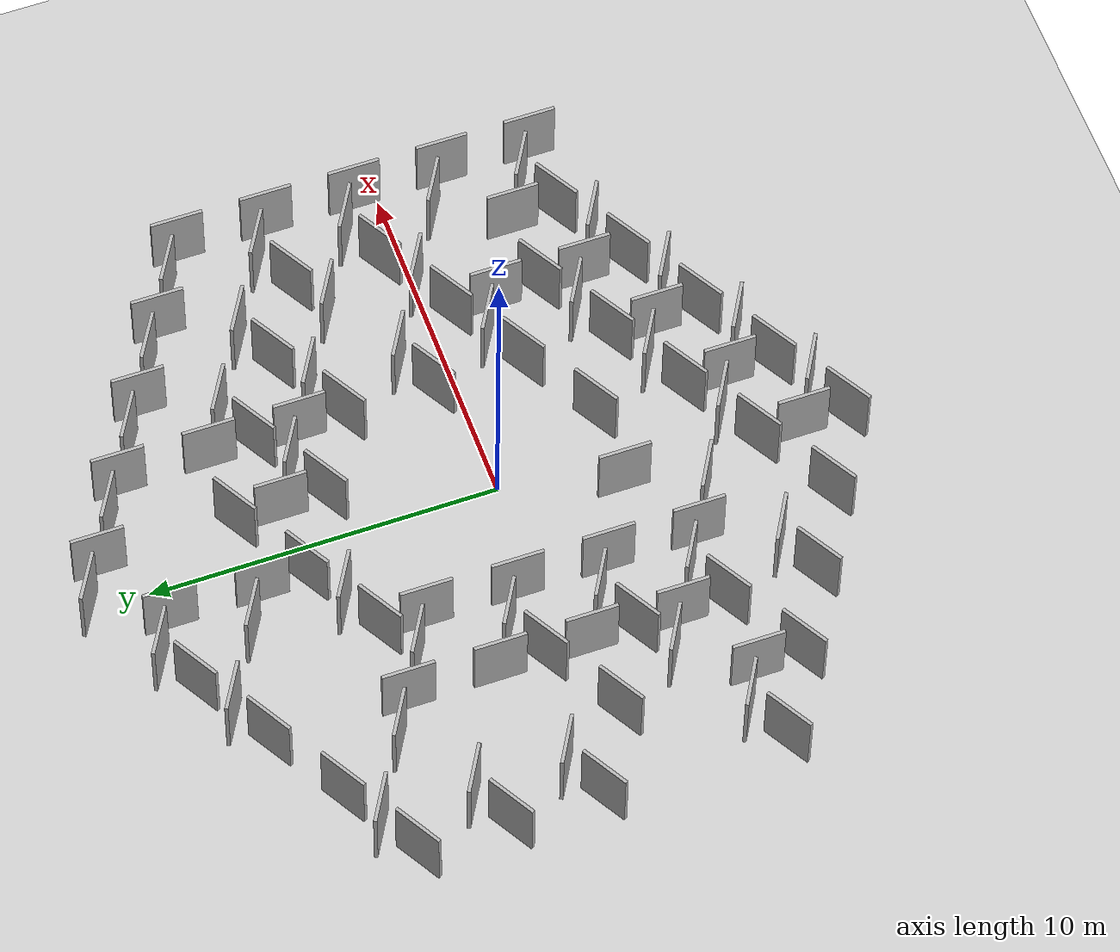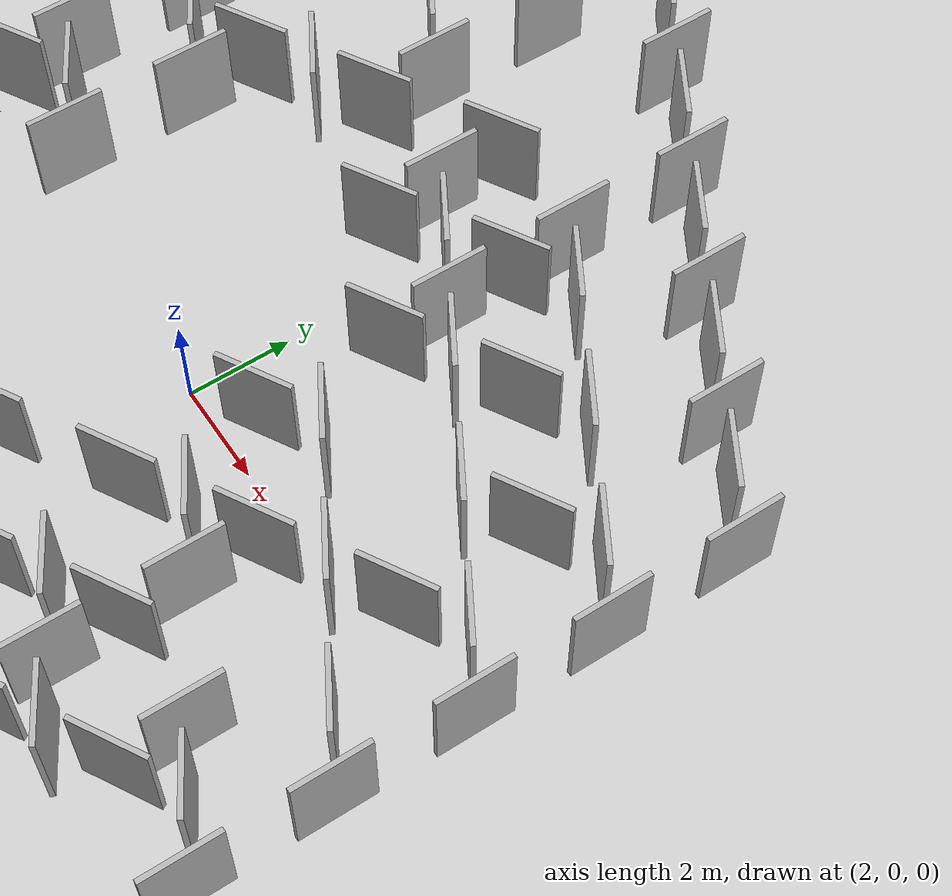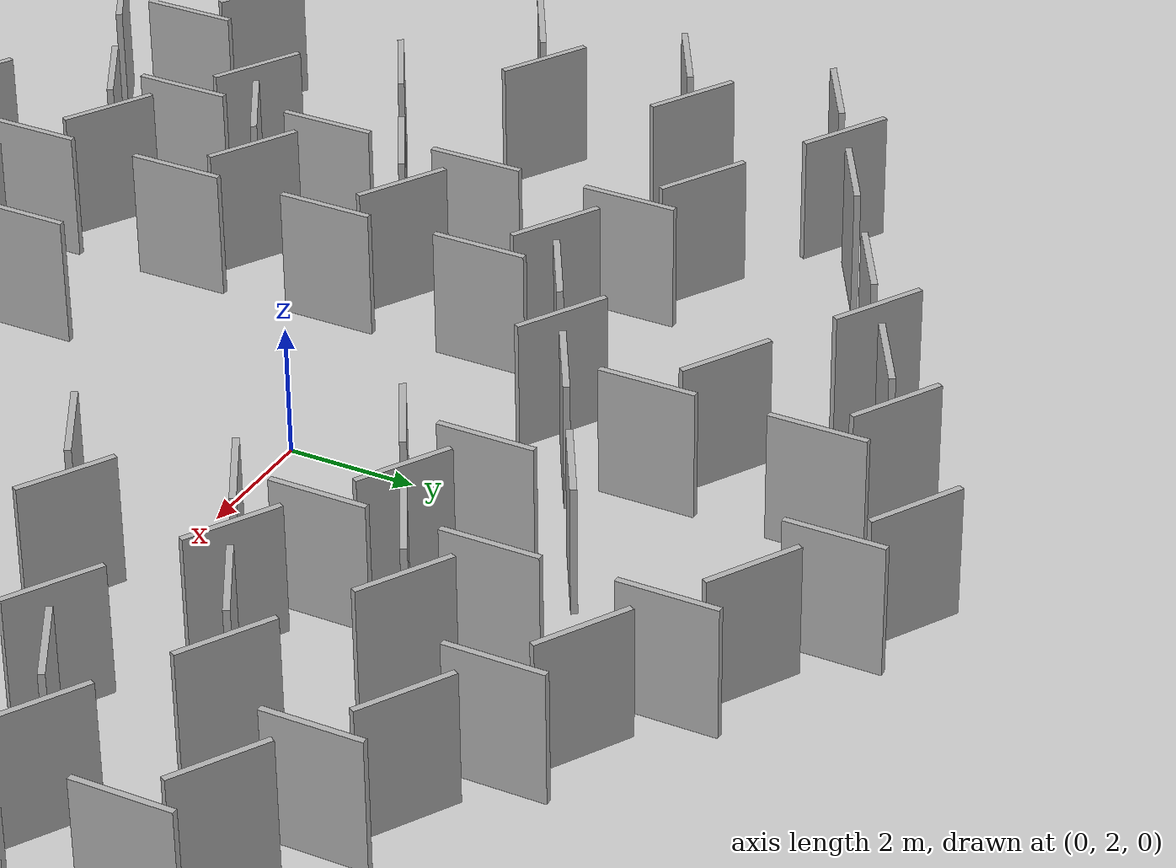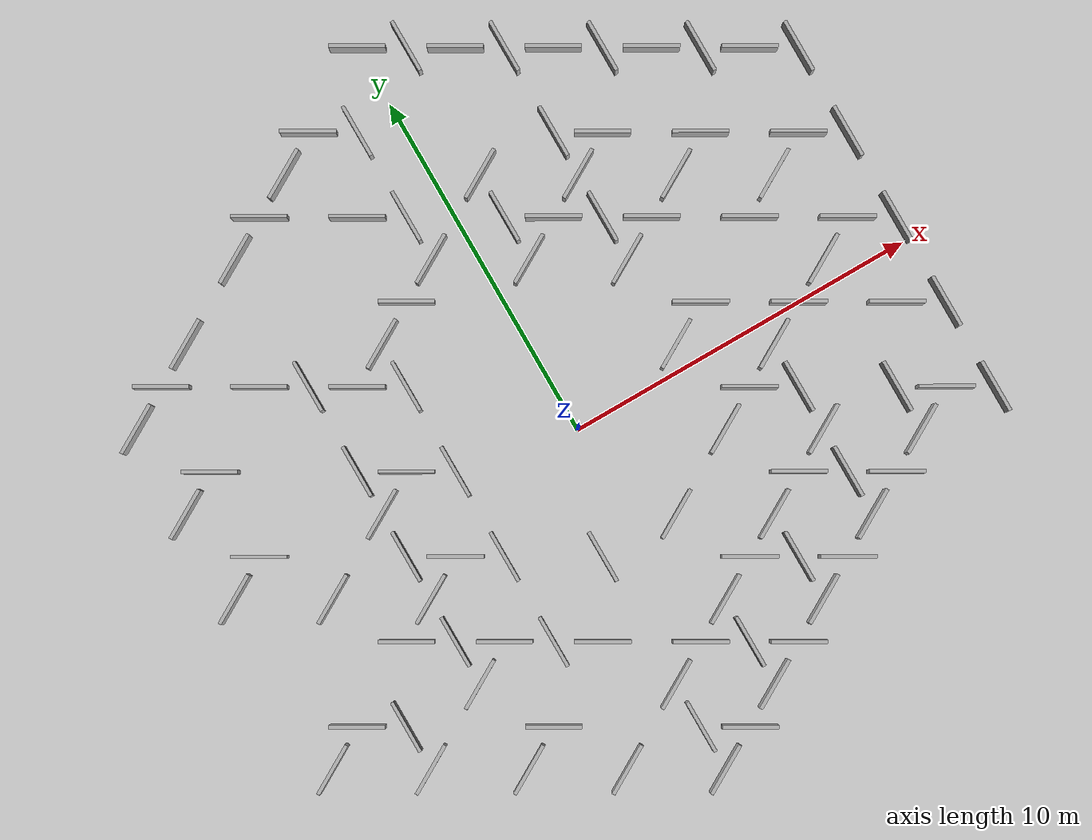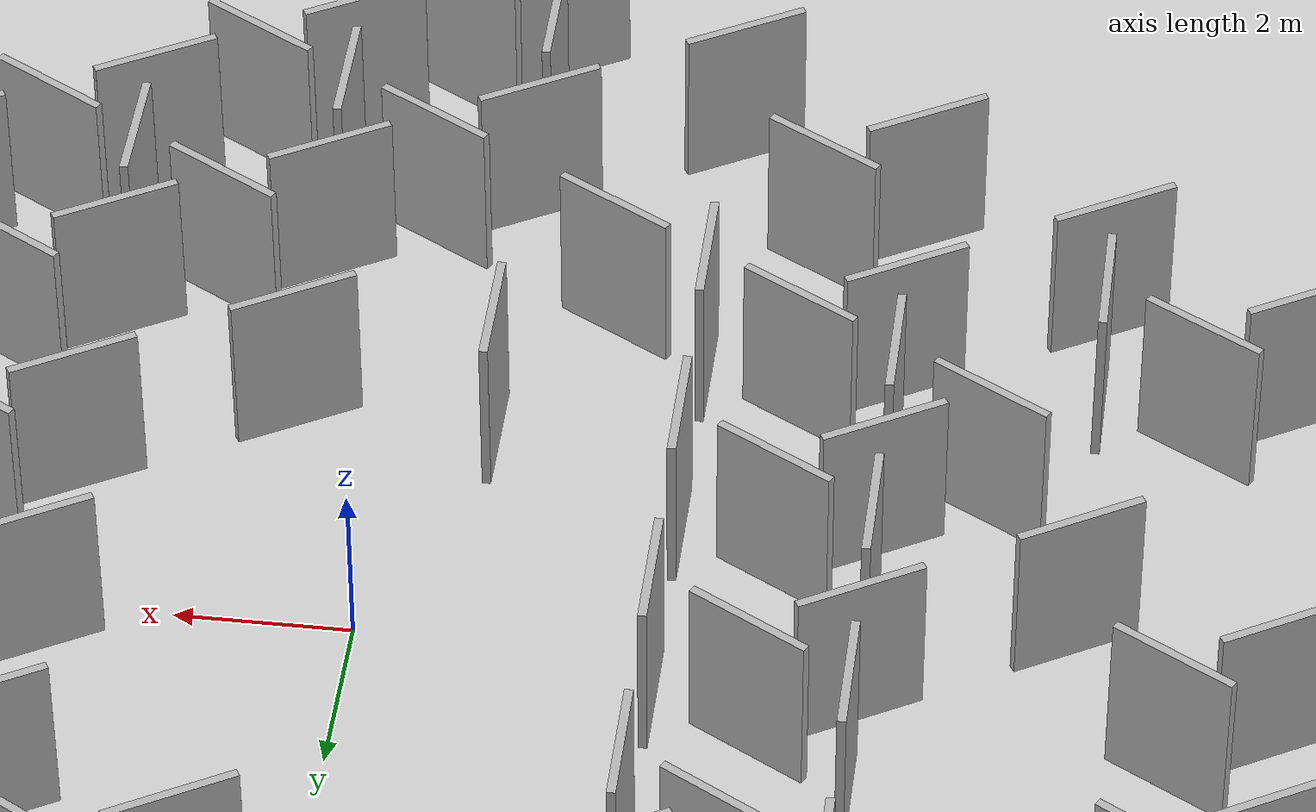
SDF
<?xml version="1.0" ?>
<sdf version="1.6">
  <world name="hex_maze_world">
    <include><uri>model://sun</uri></include>
    <include><uri>model://ground_plane</uri></include>
    <model name="sigma_maze">
      <static>true</static>

    <link name='wall_0'>
      <pose>-7.875 -4.546633369868303 1.0 0 0 1.5707963267948966</pose>
      <collision name='collision'>
        <geometry><box><size>1.5 0.1 2.0</size></box></geometry>
      </collision>
      <visual name='visual'>
        <geometry><box><size>1.5 0.1 2.0</size></box></geometry>
        <material><ambient>0.7 0.7 0.7 1</ambient><diffuse>0.7 0.7 0.7 1</diffuse></material>
      </visual>
    </link>
    <link name='wall_1'>
      <pose>-9.0 -3.897114317029974 1.0 0 0 2.617993877991494</pose>
      <collision name='collision'>
        <geometry><box><size>1.5 0.1 2.0</size></box></geometry>
      </collision>
      <visual name='visual'>
        <geometry><box><size>1.5 0.1 2.0</size></box></geometry>
        <material><ambient>0.7 0.7 0.7 1</ambient><diffuse>0.7 0.7 0.7 1</diffuse></material>
      </visual>
    </link>
    <link name='wall_2'>
      <pose>-10.125 -4.546633369868303 1.0 0 0 3.665191429188092</pose>
      <collision name='collision'>
        <geometry><box><size>1.5 0.1 2.0</size></box></geometry>
      </collision>
      <visual name='visual'>
        <geometry><box><size>1.5 0.1 2.0</size></box></geometry>
        <material><ambient>0.7 0.7 0.7 1</ambient><diffuse>0.7 0.7 0.7 1</diffuse></material>
      </visual>
    </link>
    <link name='wall_3'>
      <pose>-9.0 1.299038105676658 1.0 0 0 2.617993877991494</pose>
      <collision name='collision'>
        <geometry><box><size>1.5 0.1 2.0</size></box></geometry>
      </collision>
      <visual name='visual'>
        <geometry><box><size>1.5 0.1 2.0</size></box></geometry>
        <material><ambient>0.7 0.7 0.7 1</ambient><diffuse>0.7 0.7 0.7 1</diffuse></material>
      </visual>
    </link>
    <link name='wall_4'>
      <pose>-10.125 0.6495190528383294 1.0 0 0 3.665191429188092</pose>
      <collision name='collision'>
        <geometry><box><size>1.5 0.1 2.0</size></box></geometry>
      </collision>
      <visual name='visual'>
        <geometry><box><size>1.5 0.1 2.0</size></box></geometry>
        <material><ambient>0.7 0.7 0.7 1</ambient><diffuse>0.7 0.7 0.7 1</diffuse></material>
      </visual>
    </link>
    <link name='wall_5'>
      <pose>-9.0 3.8971143170299745 1.0 0 0 2.617993877991494</pose>
      <collision name='collision'>
        <geometry><box><size>1.5 0.1 2.0</size></box></geometry>
      </collision>
      <visual name='visual'>
        <geometry><box><size>1.5 0.1 2.0</size></box></geometry>
        <material><ambient>0.7 0.7 0.7 1</ambient><diffuse>0.7 0.7 0.7 1</diffuse></material>
      </visual>
    </link>
    <link name='wall_6'>
      <pose>-10.125 3.247595264191646 1.0 0 0 3.665191429188092</pose>
      <collision name='collision'>
        <geometry><box><size>1.5 0.1 2.0</size></box></geometry>
      </collision>
      <visual name='visual'>
        <geometry><box><size>1.5 0.1 2.0</size></box></geometry>
        <material><ambient>0.7 0.7 0.7 1</ambient><diffuse>0.7 0.7 0.7 1</diffuse></material>
      </visual>
    </link>
    <link name='wall_7'>
      <pose>-9.0 6.49519052838329 1.0 0 0 2.617993877991494</pose>
      <collision name='collision'>
        <geometry><box><size>1.5 0.1 2.0</size></box></geometry>
      </collision>
      <visual name='visual'>
        <geometry><box><size>1.5 0.1 2.0</size></box></geometry>
        <material><ambient>0.7 0.7 0.7 1</ambient><diffuse>0.7 0.7 0.7 1</diffuse></material>
      </visual>
    </link>
    <link name='wall_8'>
      <pose>-10.125 5.845671475544961 1.0 0 0 3.665191429188092</pose>
      <collision name='collision'>
        <geometry><box><size>1.5 0.1 2.0</size></box></geometry>
      </collision>
      <visual name='visual'>
        <geometry><box><size>1.5 0.1 2.0</size></box></geometry>
        <material><ambient>0.7 0.7 0.7 1</ambient><diffuse>0.7 0.7 0.7 1</diffuse></material>
      </visual>
    </link>
    <link name='wall_9'>
      <pose>-7.875 -5.845671475544959 1.0 0 0 3.665191429188092</pose>
      <collision name='collision'>
        <geometry><box><size>1.5 0.1 2.0</size></box></geometry>
      </collision>
      <visual name='visual'>
        <geometry><box><size>1.5 0.1 2.0</size></box></geometry>
        <material><ambient>0.7 0.7 0.7 1</ambient><diffuse>0.7 0.7 0.7 1</diffuse></material>
      </visual>
    </link>
    <link name='wall_10'>
      <pose>-5.625 -3.247595264191645 1.0 0 0 1.5707963267948966</pose>
      <collision name='collision'>
        <geometry><box><size>1.5 0.1 2.0</size></box></geometry>
      </collision>
      <visual name='visual'>
        <geometry><box><size>1.5 0.1 2.0</size></box></geometry>
        <material><ambient>0.7 0.7 0.7 1</ambient><diffuse>0.7 0.7 0.7 1</diffuse></material>
      </visual>
    </link>
    <link name='wall_11'>
      <pose>-6.75 -2.598076211353316 1.0 0 0 2.617993877991494</pose>
      <collision name='collision'>
        <geometry><box><size>1.5 0.1 2.0</size></box></geometry>
      </collision>
      <visual name='visual'>
        <geometry><box><size>1.5 0.1 2.0</size></box></geometry>
        <material><ambient>0.7 0.7 0.7 1</ambient><diffuse>0.7 0.7 0.7 1</diffuse></material>
      </visual>
    </link>
    <link name='wall_12'>
      <pose>-5.625 -0.6495190528383293 1.0 0 0 1.5707963267948966</pose>
      <collision name='collision'>
        <geometry><box><size>1.5 0.1 2.0</size></box></geometry>
      </collision>
      <visual name='visual'>
        <geometry><box><size>1.5 0.1 2.0</size></box></geometry>
        <material><ambient>0.7 0.7 0.7 1</ambient><diffuse>0.7 0.7 0.7 1</diffuse></material>
      </visual>
    </link>
    <link name='wall_13'>
      <pose>-7.875 -0.6495190528383288 1.0 0 0 3.665191429188092</pose>
      <collision name='collision'>
        <geometry><box><size>1.5 0.1 2.0</size></box></geometry>
      </collision>
      <visual name='visual'>
        <geometry><box><size>1.5 0.1 2.0</size></box></geometry>
        <material><ambient>0.7 0.7 0.7 1</ambient><diffuse>0.7 0.7 0.7 1</diffuse></material>
      </visual>
    </link>
    <link name='wall_14'>
      <pose>-5.625 1.9485571585149866 1.0 0 0 1.5707963267948966</pose>
      <collision name='collision'>
        <geometry><box><size>1.5 0.1 2.0</size></box></geometry>
      </collision>
      <visual name='visual'>
        <geometry><box><size>1.5 0.1 2.0</size></box></geometry>
        <material><ambient>0.7 0.7 0.7 1</ambient><diffuse>0.7 0.7 0.7 1</diffuse></material>
      </visual>
    </link>
    <link name='wall_15'>
      <pose>-5.625 4.546633369868303 1.0 0 0 1.5707963267948966</pose>
      <collision name='collision'>
        <geometry><box><size>1.5 0.1 2.0</size></box></geometry>
      </collision>
      <visual name='visual'>
        <geometry><box><size>1.5 0.1 2.0</size></box></geometry>
        <material><ambient>0.7 0.7 0.7 1</ambient><diffuse>0.7 0.7 0.7 1</diffuse></material>
      </visual>
    </link>
    <link name='wall_16'>
      <pose>-6.75 5.196152422706632 1.0 0 0 2.617993877991494</pose>
      <collision name='collision'>
        <geometry><box><size>1.5 0.1 2.0</size></box></geometry>
      </collision>
      <visual name='visual'>
        <geometry><box><size>1.5 0.1 2.0</size></box></geometry>
        <material><ambient>0.7 0.7 0.7 1</ambient><diffuse>0.7 0.7 0.7 1</diffuse></material>
      </visual>
    </link>
    <link name='wall_17'>
      <pose>-7.875 7.144709581221619 1.0 0 0 3.665191429188092</pose>
      <collision name='collision'>
        <geometry><box><size>1.5 0.1 2.0</size></box></geometry>
      </collision>
      <visual name='visual'>
        <geometry><box><size>1.5 0.1 2.0</size></box></geometry>
        <material><ambient>0.7 0.7 0.7 1</ambient><diffuse>0.7 0.7 0.7 1</diffuse></material>
      </visual>
    </link>
    <link name='wall_18'>
      <pose>-4.5 -6.49519052838329 1.0 0 0 2.617993877991494</pose>
      <collision name='collision'>
        <geometry><box><size>1.5 0.1 2.0</size></box></geometry>
      </collision>
      <visual name='visual'>
        <geometry><box><size>1.5 0.1 2.0</size></box></geometry>
        <material><ambient>0.7 0.7 0.7 1</ambient><diffuse>0.7 0.7 0.7 1</diffuse></material>
      </visual>
    </link>
    <link name='wall_19'>
      <pose>-5.625 -7.144709581221619 1.0 0 0 3.665191429188092</pose>
      <collision name='collision'>
        <geometry><box><size>1.5 0.1 2.0</size></box></geometry>
      </collision>
      <visual name='visual'>
        <geometry><box><size>1.5 0.1 2.0</size></box></geometry>
        <material><ambient>0.7 0.7 0.7 1</ambient><diffuse>0.7 0.7 0.7 1</diffuse></material>
      </visual>
    </link>
    <link name='wall_20'>
      <pose>-3.375 -4.546633369868303 1.0 0 0 1.5707963267948966</pose>
      <collision name='collision'>
        <geometry><box><size>1.5 0.1 2.0</size></box></geometry>
      </collision>
      <visual name='visual'>
        <geometry><box><size>1.5 0.1 2.0</size></box></geometry>
        <material><ambient>0.7 0.7 0.7 1</ambient><diffuse>0.7 0.7 0.7 1</diffuse></material>
      </visual>
    </link>
    <link name='wall_21'>
      <pose>-4.5 -3.897114317029974 1.0 0 0 2.617993877991494</pose>
      <collision name='collision'>
        <geometry><box><size>1.5 0.1 2.0</size></box></geometry>
      </collision>
      <visual name='visual'>
        <geometry><box><size>1.5 0.1 2.0</size></box></geometry>
        <material><ambient>0.7 0.7 0.7 1</ambient><diffuse>0.7 0.7 0.7 1</diffuse></material>
      </visual>
    </link>
    <link name='wall_22'>
      <pose>-5.625 -4.546633369868303 1.0 0 0 3.665191429188092</pose>
      <collision name='collision'>
        <geometry><box><size>1.5 0.1 2.0</size></box></geometry>
      </collision>
      <visual name='visual'>
        <geometry><box><size>1.5 0.1 2.0</size></box></geometry>
        <material><ambient>0.7 0.7 0.7 1</ambient><diffuse>0.7 0.7 0.7 1</diffuse></material>
      </visual>
    </link>
    <link name='wall_23'>
      <pose>-3.375 -1.948557158514987 1.0 0 0 1.5707963267948966</pose>
      <collision name='collision'>
        <geometry><box><size>1.5 0.1 2.0</size></box></geometry>
      </collision>
      <visual name='visual'>
        <geometry><box><size>1.5 0.1 2.0</size></box></geometry>
        <material><ambient>0.7 0.7 0.7 1</ambient><diffuse>0.7 0.7 0.7 1</diffuse></material>
      </visual>
    </link>
    <link name='wall_24'>
      <pose>-4.5 -1.299038105676658 1.0 0 0 2.617993877991494</pose>
      <collision name='collision'>
        <geometry><box><size>1.5 0.1 2.0</size></box></geometry>
      </collision>
      <visual name='visual'>
        <geometry><box><size>1.5 0.1 2.0</size></box></geometry>
        <material><ambient>0.7 0.7 0.7 1</ambient><diffuse>0.7 0.7 0.7 1</diffuse></material>
      </visual>
    </link>
    <link name='wall_25'>
      <pose>-5.625 -1.9485571585149866 1.0 0 0 3.665191429188092</pose>
      <collision name='collision'>
        <geometry><box><size>1.5 0.1 2.0</size></box></geometry>
      </collision>
      <visual name='visual'>
        <geometry><box><size>1.5 0.1 2.0</size></box></geometry>
        <material><ambient>0.7 0.7 0.7 1</ambient><diffuse>0.7 0.7 0.7 1</diffuse></material>
      </visual>
    </link>
    <link name='wall_26'>
      <pose>-3.375 0.6495190528383289 1.0 0 0 1.5707963267948966</pose>
      <collision name='collision'>
        <geometry><box><size>1.5 0.1 2.0</size></box></geometry>
      </collision>
      <visual name='visual'>
        <geometry><box><size>1.5 0.1 2.0</size></box></geometry>
        <material><ambient>0.7 0.7 0.7 1</ambient><diffuse>0.7 0.7 0.7 1</diffuse></material>
      </visual>
    </link>
    <link name='wall_27'>
      <pose>-4.5 1.299038105676658 1.0 0 0 2.617993877991494</pose>
      <collision name='collision'>
        <geometry><box><size>1.5 0.1 2.0</size></box></geometry>
      </collision>
      <visual name='visual'>
        <geometry><box><size>1.5 0.1 2.0</size></box></geometry>
        <material><ambient>0.7 0.7 0.7 1</ambient><diffuse>0.7 0.7 0.7 1</diffuse></material>
      </visual>
    </link>
    <link name='wall_28'>
      <pose>-5.625 0.6495190528383294 1.0 0 0 3.665191429188092</pose>
      <collision name='collision'>
        <geometry><box><size>1.5 0.1 2.0</size></box></geometry>
      </collision>
      <visual name='visual'>
        <geometry><box><size>1.5 0.1 2.0</size></box></geometry>
        <material><ambient>0.7 0.7 0.7 1</ambient><diffuse>0.7 0.7 0.7 1</diffuse></material>
      </visual>
    </link>
    <link name='wall_29'>
      <pose>-3.375 3.247595264191645 1.0 0 0 1.5707963267948966</pose>
      <collision name='collision'>
        <geometry><box><size>1.5 0.1 2.0</size></box></geometry>
      </collision>
      <visual name='visual'>
        <geometry><box><size>1.5 0.1 2.0</size></box></geometry>
        <material><ambient>0.7 0.7 0.7 1</ambient><diffuse>0.7 0.7 0.7 1</diffuse></material>
      </visual>
    </link>
    <link name='wall_30'>
      <pose>-4.5 3.897114317029974 1.0 0 0 2.617993877991494</pose>
      <collision name='collision'>
        <geometry><box><size>1.5 0.1 2.0</size></box></geometry>
      </collision>
      <visual name='visual'>
        <geometry><box><size>1.5 0.1 2.0</size></box></geometry>
        <material><ambient>0.7 0.7 0.7 1</ambient><diffuse>0.7 0.7 0.7 1</diffuse></material>
      </visual>
    </link>
    <link name='wall_31'>
      <pose>-4.5 9.093266739736606 1.0 0 0 2.617993877991494</pose>
      <collision name='collision'>
        <geometry><box><size>1.5 0.1 2.0</size></box></geometry>
      </collision>
      <visual name='visual'>
        <geometry><box><size>1.5 0.1 2.0</size></box></geometry>
        <material><ambient>0.7 0.7 0.7 1</ambient><diffuse>0.7 0.7 0.7 1</diffuse></material>
      </visual>
    </link>
    <link name='wall_32'>
      <pose>-5.625 8.443747686898277 1.0 0 0 3.665191429188092</pose>
      <collision name='collision'>
        <geometry><box><size>1.5 0.1 2.0</size></box></geometry>
      </collision>
      <visual name='visual'>
        <geometry><box><size>1.5 0.1 2.0</size></box></geometry>
        <material><ambient>0.7 0.7 0.7 1</ambient><diffuse>0.7 0.7 0.7 1</diffuse></material>
      </visual>
    </link>
    <link name='wall_33'>
      <pose>-1.125 -8.443747686898277 1.0 0 0 1.5707963267948966</pose>
      <collision name='collision'>
        <geometry><box><size>1.5 0.1 2.0</size></box></geometry>
      </collision>
      <visual name='visual'>
        <geometry><box><size>1.5 0.1 2.0</size></box></geometry>
        <material><ambient>0.7 0.7 0.7 1</ambient><diffuse>0.7 0.7 0.7 1</diffuse></material>
      </visual>
    </link>
    <link name='wall_34'>
      <pose>-3.375 -8.443747686898277 1.0 0 0 3.665191429188092</pose>
      <collision name='collision'>
        <geometry><box><size>1.5 0.1 2.0</size></box></geometry>
      </collision>
      <visual name='visual'>
        <geometry><box><size>1.5 0.1 2.0</size></box></geometry>
        <material><ambient>0.7 0.7 0.7 1</ambient><diffuse>0.7 0.7 0.7 1</diffuse></material>
      </visual>
    </link>
    <link name='wall_35'>
      <pose>-2.25 -5.196152422706631 1.0 0 0 2.617993877991494</pose>
      <collision name='collision'>
        <geometry><box><size>1.5 0.1 2.0</size></box></geometry>
      </collision>
      <visual name='visual'>
        <geometry><box><size>1.5 0.1 2.0</size></box></geometry>
        <material><ambient>0.7 0.7 0.7 1</ambient><diffuse>0.7 0.7 0.7 1</diffuse></material>
      </visual>
    </link>
    <link name='wall_36'>
      <pose>-1.125 -3.247595264191645 1.0 0 0 1.5707963267948966</pose>
      <collision name='collision'>
        <geometry><box><size>1.5 0.1 2.0</size></box></geometry>
      </collision>
      <visual name='visual'>
        <geometry><box><size>1.5 0.1 2.0</size></box></geometry>
        <material><ambient>0.7 0.7 0.7 1</ambient><diffuse>0.7 0.7 0.7 1</diffuse></material>
      </visual>
    </link>
    <link name='wall_37'>
      <pose>-2.25 5.196152422706632 1.0 0 0 2.617993877991494</pose>
      <collision name='collision'>
        <geometry><box><size>1.5 0.1 2.0</size></box></geometry>
      </collision>
      <visual name='visual'>
        <geometry><box><size>1.5 0.1 2.0</size></box></geometry>
        <material><ambient>0.7 0.7 0.7 1</ambient><diffuse>0.7 0.7 0.7 1</diffuse></material>
      </visual>
    </link>
    <link name='wall_38'>
      <pose>-3.375 4.546633369868303 1.0 0 0 3.665191429188092</pose>
      <collision name='collision'>
        <geometry><box><size>1.5 0.1 2.0</size></box></geometry>
      </collision>
      <visual name='visual'>
        <geometry><box><size>1.5 0.1 2.0</size></box></geometry>
        <material><ambient>0.7 0.7 0.7 1</ambient><diffuse>0.7 0.7 0.7 1</diffuse></material>
      </visual>
    </link>
    <link name='wall_39'>
      <pose>-1.125 7.144709581221619 1.0 0 0 1.5707963267948966</pose>
      <collision name='collision'>
        <geometry><box><size>1.5 0.1 2.0</size></box></geometry>
      </collision>
      <visual name='visual'>
        <geometry><box><size>1.5 0.1 2.0</size></box></geometry>
        <material><ambient>0.7 0.7 0.7 1</ambient><diffuse>0.7 0.7 0.7 1</diffuse></material>
      </visual>
    </link>
    <link name='wall_40'>
      <pose>-2.25 7.794228634059948 1.0 0 0 2.617993877991494</pose>
      <collision name='collision'>
        <geometry><box><size>1.5 0.1 2.0</size></box></geometry>
      </collision>
      <visual name='visual'>
        <geometry><box><size>1.5 0.1 2.0</size></box></geometry>
        <material><ambient>0.7 0.7 0.7 1</ambient><diffuse>0.7 0.7 0.7 1</diffuse></material>
      </visual>
    </link>
    <link name='wall_41'>
      <pose>-1.125 9.742785792574935 1.0 0 0 1.5707963267948966</pose>
      <collision name='collision'>
        <geometry><box><size>1.5 0.1 2.0</size></box></geometry>
      </collision>
      <visual name='visual'>
        <geometry><box><size>1.5 0.1 2.0</size></box></geometry>
        <material><ambient>0.7 0.7 0.7 1</ambient><diffuse>0.7 0.7 0.7 1</diffuse></material>
      </visual>
    </link>
    <link name='wall_42'>
      <pose>-2.25 10.392304845413264 1.0 0 0 2.617993877991494</pose>
      <collision name='collision'>
        <geometry><box><size>1.5 0.1 2.0</size></box></geometry>
      </collision>
      <visual name='visual'>
        <geometry><box><size>1.5 0.1 2.0</size></box></geometry>
        <material><ambient>0.7 0.7 0.7 1</ambient><diffuse>0.7 0.7 0.7 1</diffuse></material>
      </visual>
    </link>
    <link name='wall_43'>
      <pose>-3.375 9.742785792574935 1.0 0 0 3.665191429188092</pose>
      <collision name='collision'>
        <geometry><box><size>1.5 0.1 2.0</size></box></geometry>
      </collision>
      <visual name='visual'>
        <geometry><box><size>1.5 0.1 2.0</size></box></geometry>
        <material><ambient>0.7 0.7 0.7 1</ambient><diffuse>0.7 0.7 0.7 1</diffuse></material>
      </visual>
    </link>
    <link name='wall_44'>
      <pose>7.954314290436802e-17 -9.093266739736606 1.0 0 0 2.617993877991494</pose>
      <collision name='collision'>
        <geometry><box><size>1.5 0.1 2.0</size></box></geometry>
      </collision>
      <visual name='visual'>
        <geometry><box><size>1.5 0.1 2.0</size></box></geometry>
        <material><ambient>0.7 0.7 0.7 1</ambient><diffuse>0.7 0.7 0.7 1</diffuse></material>
      </visual>
    </link>
    <link name='wall_45'>
      <pose>-1.1249999999999998 -9.742785792574935 1.0 0 0 3.665191429188092</pose>
      <collision name='collision'>
        <geometry><box><size>1.5 0.1 2.0</size></box></geometry>
      </collision>
      <visual name='visual'>
        <geometry><box><size>1.5 0.1 2.0</size></box></geometry>
        <material><ambient>0.7 0.7 0.7 1</ambient><diffuse>0.7 0.7 0.7 1</diffuse></material>
      </visual>
    </link>
    <link name='wall_46'>
      <pose>1.125 -7.144709581221619 1.0 0 0 1.5707963267948966</pose>
      <collision name='collision'>
        <geometry><box><size>1.5 0.1 2.0</size></box></geometry>
      </collision>
      <visual name='visual'>
        <geometry><box><size>1.5 0.1 2.0</size></box></geometry>
        <material><ambient>0.7 0.7 0.7 1</ambient><diffuse>0.7 0.7 0.7 1</diffuse></material>
      </visual>
    </link>
    <link name='wall_47'>
      <pose>7.954314290436802e-17 -6.49519052838329 1.0 0 0 2.617993877991494</pose>
      <collision name='collision'>
        <geometry><box><size>1.5 0.1 2.0</size></box></geometry>
      </collision>
      <visual name='visual'>
        <geometry><box><size>1.5 0.1 2.0</size></box></geometry>
        <material><ambient>0.7 0.7 0.7 1</ambient><diffuse>0.7 0.7 0.7 1</diffuse></material>
      </visual>
    </link>
    <link name='wall_48'>
      <pose>-1.1249999999999998 -7.144709581221619 1.0 0 0 3.665191429188092</pose>
      <collision name='collision'>
        <geometry><box><size>1.5 0.1 2.0</size></box></geometry>
      </collision>
      <visual name='visual'>
        <geometry><box><size>1.5 0.1 2.0</size></box></geometry>
        <material><ambient>0.7 0.7 0.7 1</ambient><diffuse>0.7 0.7 0.7 1</diffuse></material>
      </visual>
    </link>
    <link name='wall_49'>
      <pose>1.125 5.845671475544961 1.0 0 0 1.5707963267948966</pose>
      <collision name='collision'>
        <geometry><box><size>1.5 0.1 2.0</size></box></geometry>
      </collision>
      <visual name='visual'>
        <geometry><box><size>1.5 0.1 2.0</size></box></geometry>
        <material><ambient>0.7 0.7 0.7 1</ambient><diffuse>0.7 0.7 0.7 1</diffuse></material>
      </visual>
    </link>
    <link name='wall_50'>
      <pose>-1.1249999999999998 5.845671475544961 1.0 0 0 3.665191429188092</pose>
      <collision name='collision'>
        <geometry><box><size>1.5 0.1 2.0</size></box></geometry>
      </collision>
      <visual name='visual'>
        <geometry><box><size>1.5 0.1 2.0</size></box></geometry>
        <material><ambient>0.7 0.7 0.7 1</ambient><diffuse>0.7 0.7 0.7 1</diffuse></material>
      </visual>
    </link>
    <link name='wall_51'>
      <pose>1.125 11.041823898251593 1.0 0 0 1.5707963267948966</pose>
      <collision name='collision'>
        <geometry><box><size>1.5 0.1 2.0</size></box></geometry>
      </collision>
      <visual name='visual'>
        <geometry><box><size>1.5 0.1 2.0</size></box></geometry>
        <material><ambient>0.7 0.7 0.7 1</ambient><diffuse>0.7 0.7 0.7 1</diffuse></material>
      </visual>
    </link>
    <link name='wall_52'>
      <pose>7.954314290436802e-17 11.691342951089922 1.0 0 0 2.617993877991494</pose>
      <collision name='collision'>
        <geometry><box><size>1.5 0.1 2.0</size></box></geometry>
      </collision>
      <visual name='visual'>
        <geometry><box><size>1.5 0.1 2.0</size></box></geometry>
        <material><ambient>0.7 0.7 0.7 1</ambient><diffuse>0.7 0.7 0.7 1</diffuse></material>
      </visual>
    </link>
    <link name='wall_53'>
      <pose>2.25 -7.794228634059948 1.0 0 0 2.617993877991494</pose>
      <collision name='collision'>
        <geometry><box><size>1.5 0.1 2.0</size></box></geometry>
      </collision>
      <visual name='visual'>
        <geometry><box><size>1.5 0.1 2.0</size></box></geometry>
        <material><ambient>0.7 0.7 0.7 1</ambient><diffuse>0.7 0.7 0.7 1</diffuse></material>
      </visual>
    </link>
    <link name='wall_54'>
      <pose>1.1250000000000002 -8.443747686898277 1.0 0 0 3.665191429188092</pose>
      <collision name='collision'>
        <geometry><box><size>1.5 0.1 2.0</size></box></geometry>
      </collision>
      <visual name='visual'>
        <geometry><box><size>1.5 0.1 2.0</size></box></geometry>
        <material><ambient>0.7 0.7 0.7 1</ambient><diffuse>0.7 0.7 0.7 1</diffuse></material>
      </visual>
    </link>
    <link name='wall_55'>
      <pose>3.375 -5.845671475544961 1.0 0 0 1.5707963267948966</pose>
      <collision name='collision'>
        <geometry><box><size>1.5 0.1 2.0</size></box></geometry>
      </collision>
      <visual name='visual'>
        <geometry><box><size>1.5 0.1 2.0</size></box></geometry>
        <material><ambient>0.7 0.7 0.7 1</ambient><diffuse>0.7 0.7 0.7 1</diffuse></material>
      </visual>
    </link>
    <link name='wall_56'>
      <pose>2.25 -5.196152422706632 1.0 0 0 2.617993877991494</pose>
      <collision name='collision'>
        <geometry><box><size>1.5 0.1 2.0</size></box></geometry>
      </collision>
      <visual name='visual'>
        <geometry><box><size>1.5 0.1 2.0</size></box></geometry>
        <material><ambient>0.7 0.7 0.7 1</ambient><diffuse>0.7 0.7 0.7 1</diffuse></material>
      </visual>
    </link>
    <link name='wall_57'>
      <pose>1.1250000000000002 -5.845671475544961 1.0 0 0 3.665191429188092</pose>
      <collision name='collision'>
        <geometry><box><size>1.5 0.1 2.0</size></box></geometry>
      </collision>
      <visual name='visual'>
        <geometry><box><size>1.5 0.1 2.0</size></box></geometry>
        <material><ambient>0.7 0.7 0.7 1</ambient><diffuse>0.7 0.7 0.7 1</diffuse></material>
      </visual>
    </link>
    <link name='wall_58'>
      <pose>1.1250000000000002 -3.2475952641916446 1.0 0 0 3.665191429188092</pose>
      <collision name='collision'>
        <geometry><box><size>1.5 0.1 2.0</size></box></geometry>
      </collision>
      <visual name='visual'>
        <geometry><box><size>1.5 0.1 2.0</size></box></geometry>
        <material><ambient>0.7 0.7 0.7 1</ambient><diffuse>0.7 0.7 0.7 1</diffuse></material>
      </visual>
    </link>
    <link name='wall_59'>
      <pose>3.375 4.546633369868303 1.0 0 0 1.5707963267948966</pose>
      <collision name='collision'>
        <geometry><box><size>1.5 0.1 2.0</size></box></geometry>
      </collision>
      <visual name='visual'>
        <geometry><box><size>1.5 0.1 2.0</size></box></geometry>
        <material><ambient>0.7 0.7 0.7 1</ambient><diffuse>0.7 0.7 0.7 1</diffuse></material>
      </visual>
    </link>
    <link name='wall_60'>
      <pose>2.25 5.196152422706632 1.0 0 0 2.617993877991494</pose>
      <collision name='collision'>
        <geometry><box><size>1.5 0.1 2.0</size></box></geometry>
      </collision>
      <visual name='visual'>
        <geometry><box><size>1.5 0.1 2.0</size></box></geometry>
        <material><ambient>0.7 0.7 0.7 1</ambient><diffuse>0.7 0.7 0.7 1</diffuse></material>
      </visual>
    </link>
    <link name='wall_61'>
      <pose>1.1250000000000002 4.546633369868303 1.0 0 0 3.665191429188092</pose>
      <collision name='collision'>
        <geometry><box><size>1.5 0.1 2.0</size></box></geometry>
      </collision>
      <visual name='visual'>
        <geometry><box><size>1.5 0.1 2.0</size></box></geometry>
        <material><ambient>0.7 0.7 0.7 1</ambient><diffuse>0.7 0.7 0.7 1</diffuse></material>
      </visual>
    </link>
    <link name='wall_62'>
      <pose>3.375 7.144709581221618 1.0 0 0 1.5707963267948966</pose>
      <collision name='collision'>
        <geometry><box><size>1.5 0.1 2.0</size></box></geometry>
      </collision>
      <visual name='visual'>
        <geometry><box><size>1.5 0.1 2.0</size></box></geometry>
        <material><ambient>0.7 0.7 0.7 1</ambient><diffuse>0.7 0.7 0.7 1</diffuse></material>
      </visual>
    </link>
    <link name='wall_63'>
      <pose>1.1250000000000002 7.144709581221619 1.0 0 0 3.665191429188092</pose>
      <collision name='collision'>
        <geometry><box><size>1.5 0.1 2.0</size></box></geometry>
      </collision>
      <visual name='visual'>
        <geometry><box><size>1.5 0.1 2.0</size></box></geometry>
        <material><ambient>0.7 0.7 0.7 1</ambient><diffuse>0.7 0.7 0.7 1</diffuse></material>
      </visual>
    </link>
    <link name='wall_64'>
      <pose>3.375 9.742785792574935 1.0 0 0 1.5707963267948966</pose>
      <collision name='collision'>
        <geometry><box><size>1.5 0.1 2.0</size></box></geometry>
      </collision>
      <visual name='visual'>
        <geometry><box><size>1.5 0.1 2.0</size></box></geometry>
        <material><ambient>0.7 0.7 0.7 1</ambient><diffuse>0.7 0.7 0.7 1</diffuse></material>
      </visual>
    </link>
    <link name='wall_65'>
      <pose>2.25 10.392304845413264 1.0 0 0 2.617993877991494</pose>
      <collision name='collision'>
        <geometry><box><size>1.5 0.1 2.0</size></box></geometry>
      </collision>
      <visual name='visual'>
        <geometry><box><size>1.5 0.1 2.0</size></box></geometry>
        <material><ambient>0.7 0.7 0.7 1</ambient><diffuse>0.7 0.7 0.7 1</diffuse></material>
      </visual>
    </link>
    <link name='wall_66'>
      <pose>4.5 -6.49519052838329 1.0 0 0 2.617993877991494</pose>
      <collision name='collision'>
        <geometry><box><size>1.5 0.1 2.0</size></box></geometry>
      </collision>
      <visual name='visual'>
        <geometry><box><size>1.5 0.1 2.0</size></box></geometry>
        <material><ambient>0.7 0.7 0.7 1</ambient><diffuse>0.7 0.7 0.7 1</diffuse></material>
      </visual>
    </link>
    <link name='wall_67'>
      <pose>3.375 -7.144709581221619 1.0 0 0 3.665191429188092</pose>
      <collision name='collision'>
        <geometry><box><size>1.5 0.1 2.0</size></box></geometry>
      </collision>
      <visual name='visual'>
        <geometry><box><size>1.5 0.1 2.0</size></box></geometry>
        <material><ambient>0.7 0.7 0.7 1</ambient><diffuse>0.7 0.7 0.7 1</diffuse></material>
      </visual>
    </link>
    <link name='wall_68'>
      <pose>5.625 -4.546633369868303 1.0 0 0 1.5707963267948966</pose>
      <collision name='collision'>
        <geometry><box><size>1.5 0.1 2.0</size></box></geometry>
      </collision>
      <visual name='visual'>
        <geometry><box><size>1.5 0.1 2.0</size></box></geometry>
        <material><ambient>0.7 0.7 0.7 1</ambient><diffuse>0.7 0.7 0.7 1</diffuse></material>
      </visual>
    </link>
    <link name='wall_69'>
      <pose>4.5 -3.897114317029974 1.0 0 0 2.617993877991494</pose>
      <collision name='collision'>
        <geometry><box><size>1.5 0.1 2.0</size></box></geometry>
      </collision>
      <visual name='visual'>
        <geometry><box><size>1.5 0.1 2.0</size></box></geometry>
        <material><ambient>0.7 0.7 0.7 1</ambient><diffuse>0.7 0.7 0.7 1</diffuse></material>
      </visual>
    </link>
    <link name='wall_70'>
      <pose>3.375 -4.546633369868303 1.0 0 0 3.665191429188092</pose>
      <collision name='collision'>
        <geometry><box><size>1.5 0.1 2.0</size></box></geometry>
      </collision>
      <visual name='visual'>
        <geometry><box><size>1.5 0.1 2.0</size></box></geometry>
        <material><ambient>0.7 0.7 0.7 1</ambient><diffuse>0.7 0.7 0.7 1</diffuse></material>
      </visual>
    </link>
    <link name='wall_71'>
      <pose>5.625 -1.948557158514987 1.0 0 0 1.5707963267948966</pose>
      <collision name='collision'>
        <geometry><box><size>1.5 0.1 2.0</size></box></geometry>
      </collision>
      <visual name='visual'>
        <geometry><box><size>1.5 0.1 2.0</size></box></geometry>
        <material><ambient>0.7 0.7 0.7 1</ambient><diffuse>0.7 0.7 0.7 1</diffuse></material>
      </visual>
    </link>
    <link name='wall_72'>
      <pose>4.5 -1.299038105676658 1.0 0 0 2.617993877991494</pose>
      <collision name='collision'>
        <geometry><box><size>1.5 0.1 2.0</size></box></geometry>
      </collision>
      <visual name='visual'>
        <geometry><box><size>1.5 0.1 2.0</size></box></geometry>
        <material><ambient>0.7 0.7 0.7 1</ambient><diffuse>0.7 0.7 0.7 1</diffuse></material>
      </visual>
    </link>
    <link name='wall_73'>
      <pose>3.375 -1.9485571585149866 1.0 0 0 3.665191429188092</pose>
      <collision name='collision'>
        <geometry><box><size>1.5 0.1 2.0</size></box></geometry>
      </collision>
      <visual name='visual'>
        <geometry><box><size>1.5 0.1 2.0</size></box></geometry>
        <material><ambient>0.7 0.7 0.7 1</ambient><diffuse>0.7 0.7 0.7 1</diffuse></material>
      </visual>
    </link>
    <link name='wall_74'>
      <pose>4.5 1.299038105676658 1.0 0 0 2.617993877991494</pose>
      <collision name='collision'>
        <geometry><box><size>1.5 0.1 2.0</size></box></geometry>
      </collision>
      <visual name='visual'>
        <geometry><box><size>1.5 0.1 2.0</size></box></geometry>
        <material><ambient>0.7 0.7 0.7 1</ambient><diffuse>0.7 0.7 0.7 1</diffuse></material>
      </visual>
    </link>
    <link name='wall_75'>
      <pose>3.375 0.6495190528383294 1.0 0 0 3.665191429188092</pose>
      <collision name='collision'>
        <geometry><box><size>1.5 0.1 2.0</size></box></geometry>
      </collision>
      <visual name='visual'>
        <geometry><box><size>1.5 0.1 2.0</size></box></geometry>
        <material><ambient>0.7 0.7 0.7 1</ambient><diffuse>0.7 0.7 0.7 1</diffuse></material>
      </visual>
    </link>
    <link name='wall_76'>
      <pose>4.5 3.897114317029974 1.0 0 0 2.617993877991494</pose>
      <collision name='collision'>
        <geometry><box><size>1.5 0.1 2.0</size></box></geometry>
      </collision>
      <visual name='visual'>
        <geometry><box><size>1.5 0.1 2.0</size></box></geometry>
        <material><ambient>0.7 0.7 0.7 1</ambient><diffuse>0.7 0.7 0.7 1</diffuse></material>
      </visual>
    </link>
    <link name='wall_77'>
      <pose>3.375 3.2475952641916455 1.0 0 0 3.665191429188092</pose>
      <collision name='collision'>
        <geometry><box><size>1.5 0.1 2.0</size></box></geometry>
      </collision>
      <visual name='visual'>
        <geometry><box><size>1.5 0.1 2.0</size></box></geometry>
        <material><ambient>0.7 0.7 0.7 1</ambient><diffuse>0.7 0.7 0.7 1</diffuse></material>
      </visual>
    </link>
    <link name='wall_78'>
      <pose>4.5 6.49519052838329 1.0 0 0 2.617993877991494</pose>
      <collision name='collision'>
        <geometry><box><size>1.5 0.1 2.0</size></box></geometry>
      </collision>
      <visual name='visual'>
        <geometry><box><size>1.5 0.1 2.0</size></box></geometry>
        <material><ambient>0.7 0.7 0.7 1</ambient><diffuse>0.7 0.7 0.7 1</diffuse></material>
      </visual>
    </link>
    <link name='wall_79'>
      <pose>3.375 5.845671475544961 1.0 0 0 3.665191429188092</pose>
      <collision name='collision'>
        <geometry><box><size>1.5 0.1 2.0</size></box></geometry>
      </collision>
      <visual name='visual'>
        <geometry><box><size>1.5 0.1 2.0</size></box></geometry>
        <material><ambient>0.7 0.7 0.7 1</ambient><diffuse>0.7 0.7 0.7 1</diffuse></material>
      </visual>
    </link>
    <link name='wall_80'>
      <pose>5.625 8.443747686898277 1.0 0 0 1.5707963267948966</pose>
      <collision name='collision'>
        <geometry><box><size>1.5 0.1 2.0</size></box></geometry>
      </collision>
      <visual name='visual'>
        <geometry><box><size>1.5 0.1 2.0</size></box></geometry>
        <material><ambient>0.7 0.7 0.7 1</ambient><diffuse>0.7 0.7 0.7 1</diffuse></material>
      </visual>
    </link>
    <link name='wall_81'>
      <pose>4.5 9.093266739736606 1.0 0 0 2.617993877991494</pose>
      <collision name='collision'>
        <geometry><box><size>1.5 0.1 2.0</size></box></geometry>
      </collision>
      <visual name='visual'>
        <geometry><box><size>1.5 0.1 2.0</size></box></geometry>
        <material><ambient>0.7 0.7 0.7 1</ambient><diffuse>0.7 0.7 0.7 1</diffuse></material>
      </visual>
    </link>
    <link name='wall_82'>
      <pose>6.75 -5.196152422706631 1.0 0 0 2.617993877991494</pose>
      <collision name='collision'>
        <geometry><box><size>1.5 0.1 2.0</size></box></geometry>
      </collision>
      <visual name='visual'>
        <geometry><box><size>1.5 0.1 2.0</size></box></geometry>
        <material><ambient>0.7 0.7 0.7 1</ambient><diffuse>0.7 0.7 0.7 1</diffuse></material>
      </visual>
    </link>
    <link name='wall_83'>
      <pose>5.625 -5.845671475544959 1.0 0 0 3.665191429188092</pose>
      <collision name='collision'>
        <geometry><box><size>1.5 0.1 2.0</size></box></geometry>
      </collision>
      <visual name='visual'>
        <geometry><box><size>1.5 0.1 2.0</size></box></geometry>
        <material><ambient>0.7 0.7 0.7 1</ambient><diffuse>0.7 0.7 0.7 1</diffuse></material>
      </visual>
    </link>
    <link name='wall_84'>
      <pose>7.875 -3.247595264191645 1.0 0 0 1.5707963267948966</pose>
      <collision name='collision'>
        <geometry><box><size>1.5 0.1 2.0</size></box></geometry>
      </collision>
      <visual name='visual'>
        <geometry><box><size>1.5 0.1 2.0</size></box></geometry>
        <material><ambient>0.7 0.7 0.7 1</ambient><diffuse>0.7 0.7 0.7 1</diffuse></material>
      </visual>
    </link>
    <link name='wall_85'>
      <pose>5.625 -3.2475952641916446 1.0 0 0 3.665191429188092</pose>
      <collision name='collision'>
        <geometry><box><size>1.5 0.1 2.0</size></box></geometry>
      </collision>
      <visual name='visual'>
        <geometry><box><size>1.5 0.1 2.0</size></box></geometry>
        <material><ambient>0.7 0.7 0.7 1</ambient><diffuse>0.7 0.7 0.7 1</diffuse></material>
      </visual>
    </link>
    <link name='wall_86'>
      <pose>6.75 4.440892098500626e-16 1.0 0 0 2.617993877991494</pose>
      <collision name='collision'>
        <geometry><box><size>1.5 0.1 2.0</size></box></geometry>
      </collision>
      <visual name='visual'>
        <geometry><box><size>1.5 0.1 2.0</size></box></geometry>
        <material><ambient>0.7 0.7 0.7 1</ambient><diffuse>0.7 0.7 0.7 1</diffuse></material>
      </visual>
    </link>
    <link name='wall_87'>
      <pose>5.625 -0.6495190528383281 1.0 0 0 3.665191429188092</pose>
      <collision name='collision'>
        <geometry><box><size>1.5 0.1 2.0</size></box></geometry>
      </collision>
      <visual name='visual'>
        <geometry><box><size>1.5 0.1 2.0</size></box></geometry>
        <material><ambient>0.7 0.7 0.7 1</ambient><diffuse>0.7 0.7 0.7 1</diffuse></material>
      </visual>
    </link>
    <link name='wall_88'>
      <pose>6.75 2.598076211353316 1.0 0 0 2.617993877991494</pose>
      <collision name='collision'>
        <geometry><box><size>1.5 0.1 2.0</size></box></geometry>
      </collision>
      <visual name='visual'>
        <geometry><box><size>1.5 0.1 2.0</size></box></geometry>
        <material><ambient>0.7 0.7 0.7 1</ambient><diffuse>0.7 0.7 0.7 1</diffuse></material>
      </visual>
    </link>
    <link name='wall_89'>
      <pose>6.75 5.196152422706632 1.0 0 0 2.617993877991494</pose>
      <collision name='collision'>
        <geometry><box><size>1.5 0.1 2.0</size></box></geometry>
      </collision>
      <visual name='visual'>
        <geometry><box><size>1.5 0.1 2.0</size></box></geometry>
        <material><ambient>0.7 0.7 0.7 1</ambient><diffuse>0.7 0.7 0.7 1</diffuse></material>
      </visual>
    </link>
    <link name='wall_90'>
      <pose>5.625 4.546633369868303 1.0 0 0 3.665191429188092</pose>
      <collision name='collision'>
        <geometry><box><size>1.5 0.1 2.0</size></box></geometry>
      </collision>
      <visual name='visual'>
        <geometry><box><size>1.5 0.1 2.0</size></box></geometry>
        <material><ambient>0.7 0.7 0.7 1</ambient><diffuse>0.7 0.7 0.7 1</diffuse></material>
      </visual>
    </link>
    <link name='wall_91'>
      <pose>7.875 7.144709581221618 1.0 0 0 1.5707963267948966</pose>
      <collision name='collision'>
        <geometry><box><size>1.5 0.1 2.0</size></box></geometry>
      </collision>
      <visual name='visual'>
        <geometry><box><size>1.5 0.1 2.0</size></box></geometry>
        <material><ambient>0.7 0.7 0.7 1</ambient><diffuse>0.7 0.7 0.7 1</diffuse></material>
      </visual>
    </link>
    <link name='wall_92'>
      <pose>6.75 7.794228634059947 1.0 0 0 2.617993877991494</pose>
      <collision name='collision'>
        <geometry><box><size>1.5 0.1 2.0</size></box></geometry>
      </collision>
      <visual name='visual'>
        <geometry><box><size>1.5 0.1 2.0</size></box></geometry>
        <material><ambient>0.7 0.7 0.7 1</ambient><diffuse>0.7 0.7 0.7 1</diffuse></material>
      </visual>
    </link>
    <link name='wall_93'>
      <pose>10.125 -4.546633369868303 1.0 0 0 1.5707963267948966</pose>
      <collision name='collision'>
        <geometry><box><size>1.5 0.1 2.0</size></box></geometry>
      </collision>
      <visual name='visual'>
        <geometry><box><size>1.5 0.1 2.0</size></box></geometry>
        <material><ambient>0.7 0.7 0.7 1</ambient><diffuse>0.7 0.7 0.7 1</diffuse></material>
      </visual>
    </link>
    <link name='wall_94'>
      <pose>9.0 -3.897114317029974 1.0 0 0 2.617993877991494</pose>
      <collision name='collision'>
        <geometry><box><size>1.5 0.1 2.0</size></box></geometry>
      </collision>
      <visual name='visual'>
        <geometry><box><size>1.5 0.1 2.0</size></box></geometry>
        <material><ambient>0.7 0.7 0.7 1</ambient><diffuse>0.7 0.7 0.7 1</diffuse></material>
      </visual>
    </link>
    <link name='wall_95'>
      <pose>7.875 -4.546633369868303 1.0 0 0 3.665191429188092</pose>
      <collision name='collision'>
        <geometry><box><size>1.5 0.1 2.0</size></box></geometry>
      </collision>
      <visual name='visual'>
        <geometry><box><size>1.5 0.1 2.0</size></box></geometry>
        <material><ambient>0.7 0.7 0.7 1</ambient><diffuse>0.7 0.7 0.7 1</diffuse></material>
      </visual>
    </link>
    <link name='wall_96'>
      <pose>10.125 -1.9485571585149875 1.0 0 0 1.5707963267948966</pose>
      <collision name='collision'>
        <geometry><box><size>1.5 0.1 2.0</size></box></geometry>
      </collision>
      <visual name='visual'>
        <geometry><box><size>1.5 0.1 2.0</size></box></geometry>
        <material><ambient>0.7 0.7 0.7 1</ambient><diffuse>0.7 0.7 0.7 1</diffuse></material>
      </visual>
    </link>
    <link name='wall_97'>
      <pose>9.0 -1.2990381056766584 1.0 0 0 2.617993877991494</pose>
      <collision name='collision'>
        <geometry><box><size>1.5 0.1 2.0</size></box></geometry>
      </collision>
      <visual name='visual'>
        <geometry><box><size>1.5 0.1 2.0</size></box></geometry>
        <material><ambient>0.7 0.7 0.7 1</ambient><diffuse>0.7 0.7 0.7 1</diffuse></material>
      </visual>
    </link>
    <link name='wall_98'>
      <pose>10.125 0.6495190528383289 1.0 0 0 1.5707963267948966</pose>
      <collision name='collision'>
        <geometry><box><size>1.5 0.1 2.0</size></box></geometry>
      </collision>
      <visual name='visual'>
        <geometry><box><size>1.5 0.1 2.0</size></box></geometry>
        <material><ambient>0.7 0.7 0.7 1</ambient><diffuse>0.7 0.7 0.7 1</diffuse></material>
      </visual>
    </link>
    <link name='wall_99'>
      <pose>9.0 1.299038105676658 1.0 0 0 2.617993877991494</pose>
      <collision name='collision'>
        <geometry><box><size>1.5 0.1 2.0</size></box></geometry>
      </collision>
      <visual name='visual'>
        <geometry><box><size>1.5 0.1 2.0</size></box></geometry>
        <material><ambient>0.7 0.7 0.7 1</ambient><diffuse>0.7 0.7 0.7 1</diffuse></material>
      </visual>
    </link>
    <link name='wall_100'>
      <pose>7.875 0.6495190528383294 1.0 0 0 3.665191429188092</pose>
      <collision name='collision'>
        <geometry><box><size>1.5 0.1 2.0</size></box></geometry>
      </collision>
      <visual name='visual'>
        <geometry><box><size>1.5 0.1 2.0</size></box></geometry>
        <material><ambient>0.7 0.7 0.7 1</ambient><diffuse>0.7 0.7 0.7 1</diffuse></material>
      </visual>
    </link>
    <link name='wall_101'>
      <pose>10.125 3.247595264191645 1.0 0 0 1.5707963267948966</pose>
      <collision name='collision'>
        <geometry><box><size>1.5 0.1 2.0</size></box></geometry>
      </collision>
      <visual name='visual'>
        <geometry><box><size>1.5 0.1 2.0</size></box></geometry>
        <material><ambient>0.7 0.7 0.7 1</ambient><diffuse>0.7 0.7 0.7 1</diffuse></material>
      </visual>
    </link>
    <link name='wall_102'>
      <pose>9.0 3.897114317029974 1.0 0 0 2.617993877991494</pose>
      <collision name='collision'>
        <geometry><box><size>1.5 0.1 2.0</size></box></geometry>
      </collision>
      <visual name='visual'>
        <geometry><box><size>1.5 0.1 2.0</size></box></geometry>
        <material><ambient>0.7 0.7 0.7 1</ambient><diffuse>0.7 0.7 0.7 1</diffuse></material>
      </visual>
    </link>
    <link name='wall_103'>
      <pose>7.875 3.2475952641916455 1.0 0 0 3.665191429188092</pose>
      <collision name='collision'>
        <geometry><box><size>1.5 0.1 2.0</size></box></geometry>
      </collision>
      <visual name='visual'>
        <geometry><box><size>1.5 0.1 2.0</size></box></geometry>
        <material><ambient>0.7 0.7 0.7 1</ambient><diffuse>0.7 0.7 0.7 1</diffuse></material>
      </visual>
    </link>
    <link name='wall_104'>
      <pose>10.125 5.845671475544961 1.0 0 0 1.5707963267948966</pose>
      <collision name='collision'>
        <geometry><box><size>1.5 0.1 2.0</size></box></geometry>
      </collision>
      <visual name='visual'>
        <geometry><box><size>1.5 0.1 2.0</size></box></geometry>
        <material><ambient>0.7 0.7 0.7 1</ambient><diffuse>0.7 0.7 0.7 1</diffuse></material>
      </visual>
    </link>
    <link name='wall_105'>
      <pose>9.0 6.49519052838329 1.0 0 0 2.617993877991494</pose>
      <collision name='collision'>
        <geometry><box><size>1.5 0.1 2.0</size></box></geometry>
      </collision>
      <visual name='visual'>
        <geometry><box><size>1.5 0.1 2.0</size></box></geometry>
        <material><ambient>0.7 0.7 0.7 1</ambient><diffuse>0.7 0.7 0.7 1</diffuse></material>
      </visual>
    </link>
    </model>
  </world>
</sdf>
